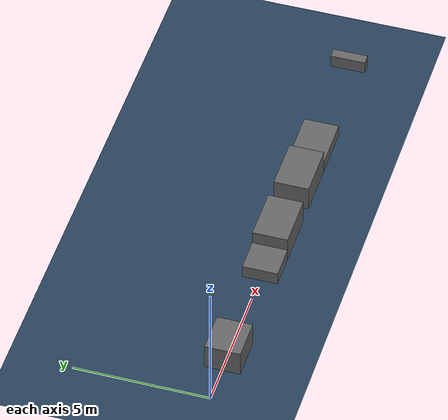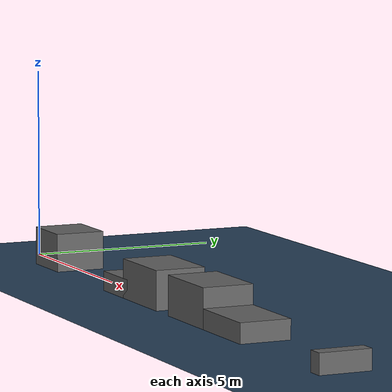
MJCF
<?xml version="1.0" encoding="utf-8"?>
<mujoco model="rbq environment">

    <!-- Statistics -->
    <statistic center="0 0 0.1" extent="0.8"/>

    <!-- Visual settings -->
    <visual>
        <headlight diffuse="0.6 0.6 0.6" ambient="0.3 0.3 0.3" specular="0 0 0"/>
        <rgba haze="0.15 0.25 0.35 1"/>
        <global azimuth="-130" elevation="-20"/>
    </visual>

    <!-- Assets -->
    <asset>
        <texture type="skybox" builtin="gradient" rgb1="0.3 0.5 0.7" rgb2="0 0 0" width="512" height="3072"/>
        <texture type="2d" name="groundplane" builtin="checker" mark="edge" rgb1="0.2 0.3 0.4" rgb2="0.1 0.2 0.3"
            markrgb="0.8 0.8 0.8" width="300" height="300"/>
        <material name="groundplane" texture="groundplane" texuniform="true" texrepeat="5 5" reflectance="0.2"/>

        <texture name="grid" type="2d" builtin="checker" rgb1="0.4 0.5 0.6" rgb2="0.9 0.9 0.9" width="512" height="512" />
        <material name="ground" texture="grid" texrepeat="1 1" reflectance="0" shininess="0.2" specular="0.2" />

        <!-- Stair texture and material -->
        <texture type="2d" name="stair_checker" builtin="checker" mark="edge" rgb1="0.4 0.4 0.4" rgb2="0.6 0.6 0.6"
            markrgb="0.2 0.2 0.2" width="256" height="256"/>
        <material name="stair_material" texture="stair_checker" texuniform="true" texrepeat="3 3" reflectance="0.1"/>

        <!-- Docking station mesh -->
        <mesh name="docking_station" file="../meshes/env/Docking_station.obj"/>
        <texture type="2d" name="bottom_aruco" file="env/bottom_id.png"/>
        <texture type="2d" name="rear_aruco" file="env/rear_id.png"/>
        <material name="bottom_aruco_material" texture="bottom_aruco" texuniform="false" texrepeat="1 1" reflectance="0.1"/>
        <material name="rear_aruco_material" texture="rear_aruco" texuniform="false" texrepeat="1 1" reflectance="0.1"/>
    </asset>

    <!-- Default class definitions -->
    <default>
        <default class="obstacle">
            <geom type="box" friction="0.8 0.8 0.8" priority="2"/>
        </default>
        <default class="slippery">
            <geom type="box" priority="2"/>
        </default>
    </default>

    <!-- Worldbody -->
    <worldbody>
        <!-- Lighting -->
        <light pos="0 0 1.5" dir="0 0 -1" directional="true"/>
        <light name="robot_light" pos="0 0 2" dir="0 0 -1" diffuse="0.7 0.7 0.7" specular="0.2 0.2 0.2"/>

        <!-- Ground -->
        <geom name="floor" size="0 0 0.1" type="plane" material="groundplane" />

        <geom name="huddle1" class="obstacle" pos="2.15 0 0.5"  size="0.75 0.65 0.5"  quat="1.0 0 0 0" rgba="0.4 0.4 0.4 1"/>

        <geom name="step1" class="obstacle" pos="6.75 0 0.25"  size="0.75 0.65 0.25"  quat="1.0 0 0 0" rgba="0.4 0.4 0.4 1"/>
        <geom name="stpe2" class="obstacle" pos="8.25 0 0.5"  size="1.0 0.65 0.5"  quat="1.0 0 0 0" rgba="0.4 0.4 0.4 1"/>

        <geom name="gap1" class="obstacle" pos="10.95 0 0.5"  size="1.0 0.65 0.5"  quat="1.0 0 0 0" rgba="0.4 0.4 0.4 1"/>
        <geom name="stpe3" class="obstacle" pos="12.95 0 0.25"  size="1.0 0.65 0.25"  quat="1.0 0 0 0" rgba="0.4 0.4 0.4 1"/>

        <geom name="huddle2" class="obstacle" pos="17.7 0 0.25"  size="0.2 0.65 0.25"  quat="1.0 0 0 0" rgba="0.4 0.4 0.4 1"/>

    </worldbody>

    <contact>
        <!-- Floor contact -->
        <pair geom1="RR" geom2="floor"/>
        <pair geom1="RL" geom2="floor"/>
        <pair geom1="FR" geom2="floor"/>
        <pair geom1="FL" geom2="floor"/>

        <pair geom1="RR" geom2="step1"/>
        <pair geom1="RL" geom2="step1"/>
        <pair geom1="FR" geom2="step1"/>
        <pair geom1="FL" geom2="step1"/>

        <pair geom1="RR" geom2="stpe2"/>
        <pair geom1="RL" geom2="stpe2"/>
        <pair geom1="FR" geom2="stpe2"/>
        <pair geom1="FL" geom2="stpe2"/>

        <pair geom1="RR" geom2="gap1"/>
        <pair geom1="RL" geom2="gap1"/>
        <pair geom1="FR" geom2="gap1"/>
        <pair geom1="FL" geom2="gap1"/>

        <pair geom1="RR" geom2="stpe3"/>
        <pair geom1="RL" geom2="stpe3"/>
        <pair geom1="FR" geom2="stpe3"/>
        <pair geom1="FL" geom2="stpe3"/>

        <pair geom1="RR" geom2="huddle1"/>
        <pair geom1="RL" geom2="huddle1"/>
        <pair geom1="FR" geom2="huddle1"/>
        <pair geom1="FL" geom2="huddle1"/>

        <pair geom1="RR" geom2="huddle2"/>
        <pair geom1="RL" geom2="huddle2"/>
        <pair geom1="FR" geom2="huddle2"/>
        <pair geom1="FL" geom2="huddle2"/>

    </contact>

</mujoco>
